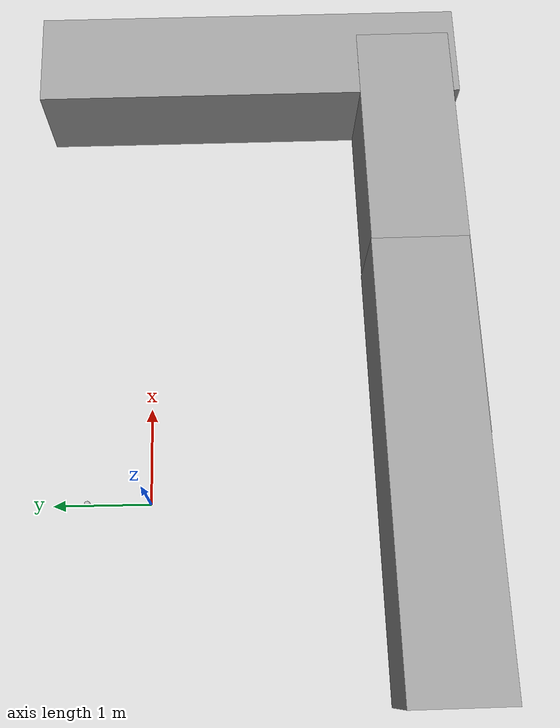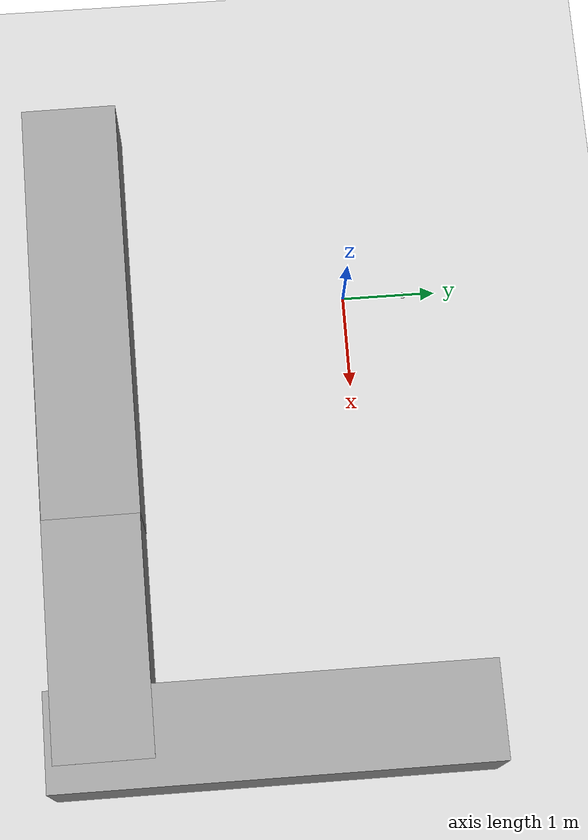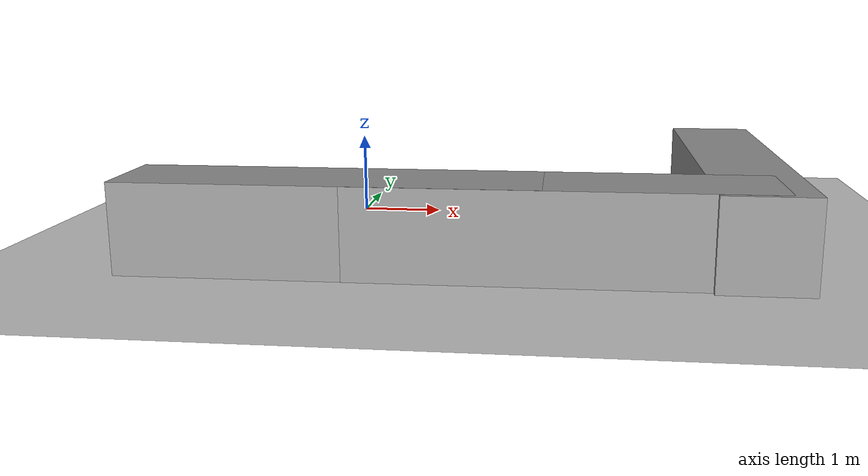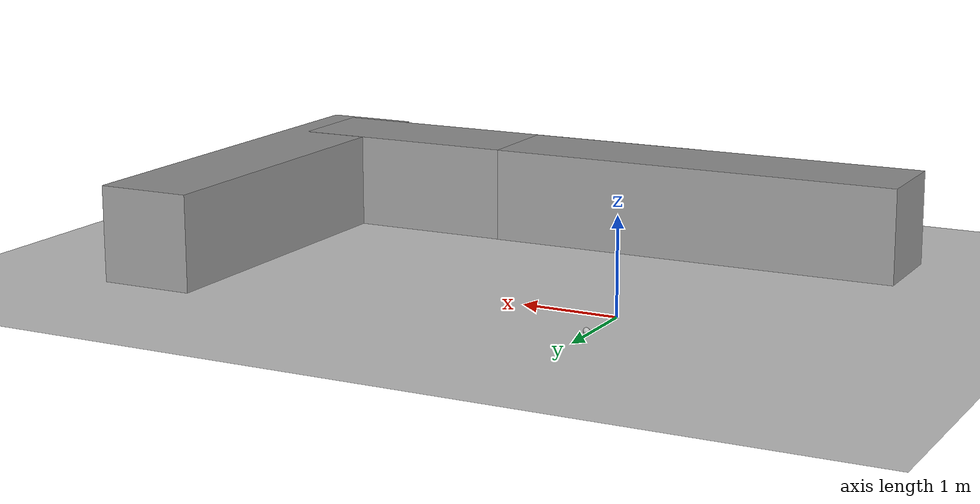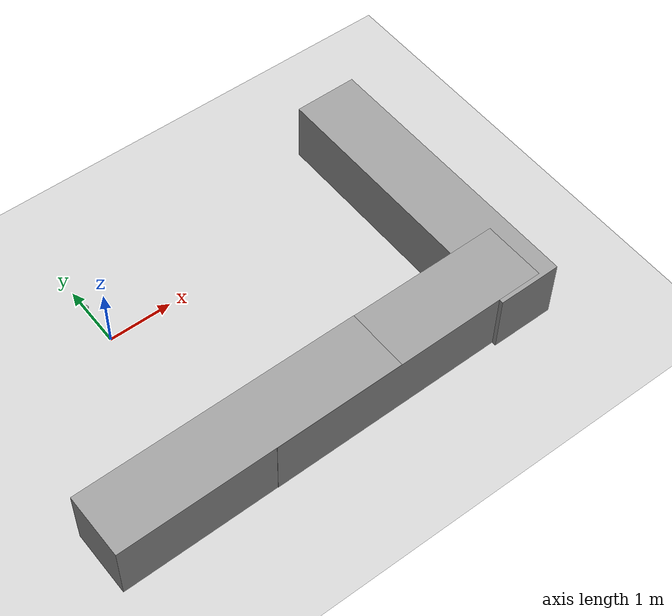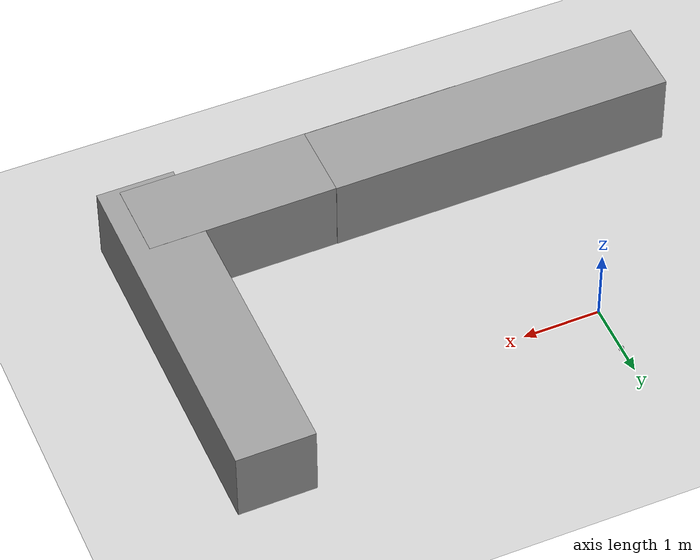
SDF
<sdf version="1.6">
 <world name="default">
  <model name="ground_plane">
   <static>1</static>
   <link name="link">
    <collision name="collision">
     <geometry><plane><normal>0 0 1</normal><size>100 100</size></plane></geometry>
     <surface><friction><ode><mu>100</mu><mu2>50</mu2></ode></friction></surface>
    </collision>
    <visual name="visual">
     <cast_shadows>0</cast_shadows>
     <geometry><plane><normal>0 0 1</normal><size>100 100</size></plane></geometry>
     <material>
      <script><uri>file://media/materials/scripts/gazebo.material</uri><name>Gazebo/Grey</name></script>
     </material>
    </visual>
   </link>
  </model>
  <model name="unit_box_0_clone_0_0_clone_clone_0_clone_clone">
   <link name="link">
    <inertial>
     <mass>1</mass>
     <inertia>
      <ixx>0.166667</ixx>
      <ixy>0</ixy>
      <ixz>0</ixz>
      <iyy>0.166667</iyy>
      <iyz>0</iyz>
      <izz>0.166667</izz>
     </inertia>
    </inertial>
    <visual name="visual">
     <geometry><box><size>1 4.48154 1</size></box></geometry>
     <material>
      <script><name>Gazebo/Grey</name><uri>file://media/materials/scripts/gazebo.material</uri></script>
      <ambient>0.3 0.3 0.3 1</ambient>
      <diffuse>0.7 0.7 0.7 1</diffuse>
      <specular>0.01 0.01 0.01 1</specular>
      <emissive>0 0 0 1</emissive>
     </material>
    </visual>
    <collision name="collision">
     <geometry><box><size>1 4.48154 1</size></box></geometry>
     <surface>
      <friction>
       <ode><mu>1</mu><mu2>1</mu2><fdir1>0 0 0</fdir1><slip1>0</slip1><slip2>0</slip2></ode>
       <torsional>
        <coefficient>1</coefficient>
        <patch_radius>0</patch_radius>
        <surface_radius>0</surface_radius>
        <use_patch_radius>1</use_patch_radius>
        <ode><slip>0</slip></ode>
       </torsional>
      </friction>
      <bounce><restitution_coefficient>0</restitution_coefficient><threshold>1e+06</threshold></bounce>
      <contact>
       <collide_without_contact>0</collide_without_contact>
       <collide_without_contact_bitmask>1</collide_without_contact_bitmask>
       <collide_bitmask>1</collide_bitmask>
       <ode>
        <soft_cfm>0</soft_cfm>
        <soft_erp>0.2</soft_erp>
        <kp>1e+13</kp>
        <kd>1</kd>
        <max_vel>0.01</max_vel>
        <min_depth>0</min_depth>
       </ode>
       <bullet>
        <split_impulse>1</split_impulse>
        <split_impulse_penetration_threshold>-0.01</split_impulse_penetration_threshold>
        <soft_cfm>0</soft_cfm>
        <soft_erp>0.2</soft_erp>
        <kp>1e+13</kp>
        <kd>1</kd>
       </bullet>
      </contact>
     </surface>
    </collision>
   </link>
   <static>1</static>
   <pose>0.247102 -2.80859 0.49975 3.14159 -0.000573 1.58078</pose>
  </model>
  <model name="unit_box_0_clone_0_0_clone_clone_0_clone_clone_clone">
   <link name="link">
    <inertial>
     <mass>1</mass>
     <inertia>
      <ixx>0.166667</ixx>
      <ixy>0</ixy>
      <ixz>0</ixz>
      <iyy>0.166667</iyy>
      <iyz>0</iyz>
      <izz>0.166667</izz>
     </inertia>
    </inertial>
    <visual name="visual">
     <geometry><box><size>1 4.48154 1</size></box></geometry>
     <material>
      <script><name>Gazebo/Grey</name><uri>file://media/materials/scripts/gazebo.material</uri></script>
      <ambient>0.3 0.3 0.3 1</ambient>
      <diffuse>0.7 0.7 0.7 1</diffuse>
      <specular>0.01 0.01 0.01 1</specular>
      <emissive>0 0 0 1</emissive>
     </material>
    </visual>
    <collision name="collision">
     <geometry><box><size>1 4.48154 1</size></box></geometry>
     <surface>
      <friction>
       <ode><mu>1</mu><mu2>1</mu2><fdir1>0 0 0</fdir1><slip1>0</slip1><slip2>0</slip2></ode>
       <torsional>
        <coefficient>1</coefficient>
        <patch_radius>0</patch_radius>
        <surface_radius>0</surface_radius>
        <use_patch_radius>1</use_patch_radius>
        <ode><slip>0</slip></ode>
       </torsional>
      </friction>
      <bounce><restitution_coefficient>0</restitution_coefficient><threshold>1e+06</threshold></bounce>
      <contact>
       <collide_without_contact>0</collide_without_contact>
       <collide_without_contact_bitmask>1</collide_without_contact_bitmask>
       <collide_bitmask>1</collide_bitmask>
       <ode>
        <soft_cfm>0</soft_cfm>
        <soft_erp>0.2</soft_erp>
        <kp>1e+13</kp>
        <kd>1</kd>
        <max_vel>0.01</max_vel>
        <min_depth>0</min_depth>
       </ode>
       <bullet>
        <split_impulse>1</split_impulse>
        <split_impulse_penetration_threshold>-0.01</split_impulse_penetration_threshold>
        <soft_cfm>0</soft_cfm>
        <soft_erp>0.2</soft_erp>
        <kp>1e+13</kp>
        <kd>1</kd>
       </bullet>
      </contact>
     </surface>
    </collision>
   </link>
   <static>1</static>
   <pose>2.68065 -2.78877 0.49975 3.14159 -0.000573 1.58078</pose>
  </model>
  <model name="unit_box_0_clone_0_0_clone_clone_0_clone_clone_clone_0_clone_clone_0_clone">
   <link name="link">
    <inertial>
     <mass>1</mass>
     <inertia>
      <ixx>0.166667</ixx>
      <ixy>0</ixy>
      <ixz>0</ixz>
      <iyy>0.166667</iyy>
      <iyz>0</iyz>
      <izz>0.166667</izz>
     </inertia>
    </inertial>
    <visual name="visual">
     <geometry><box><size>1 4.48154 1</size></box></geometry>
     <material>
      <script><name>Gazebo/Grey</name><uri>file://media/materials/scripts/gazebo.material</uri></script>
      <ambient>0.3 0.3 0.3 1</ambient>
      <diffuse>0.7 0.7 0.7 1</diffuse>
      <specular>0.01 0.01 0.01 1</specular>
      <emissive>0 0 0 1</emissive>
     </material>
    </visual>
    <collision name="collision">
     <geometry><box><size>1 4.48154 1</size></box></geometry>
     <surface>
      <friction>
       <ode><mu>1</mu><mu2>1</mu2><fdir1>0 0 0</fdir1><slip1>0</slip1><slip2>0</slip2></ode>
       <torsional>
        <coefficient>1</coefficient>
        <patch_radius>0</patch_radius>
        <surface_radius>0</surface_radius>
        <use_patch_radius>1</use_patch_radius>
        <ode><slip>0</slip></ode>
       </torsional>
      </friction>
      <bounce><restitution_coefficient>0</restitution_coefficient><threshold>1e+06</threshold></bounce>
      <contact>
       <collide_without_contact>0</collide_without_contact>
       <collide_without_contact_bitmask>1</collide_without_contact_bitmask>
       <collide_bitmask>1</collide_bitmask>
       <ode>
        <soft_cfm>0</soft_cfm>
        <soft_erp>0.2</soft_erp>
        <kp>1e+13</kp>
        <kd>1</kd>
        <max_vel>0.01</max_vel>
        <min_depth>0</min_depth>
       </ode>
       <bullet>
        <split_impulse>1</split_impulse>
        <split_impulse_penetration_threshold>-0.01</split_impulse_penetration_threshold>
        <soft_cfm>0</soft_cfm>
        <soft_erp>0.2</soft_erp>
        <kp>1e+13</kp>
        <kd>1</kd>
       </bullet>
      </contact>
     </surface>
    </collision>
   </link>
   <static>1</static>
   <pose>4.68691 -1.09395 0.49975 -3.14102 -0 0.006143</pose>
  </model>
  <model name="frc2016_ball_clone_0">
   <pose>0.012563 0.652544 0.033057 0 -0 0</pose>
   <link name="link">
    <inertial>
     <mass>0.213</mass>
     <inertia>
      <ixx>0.00322667</ixx>
      <ixy>0</ixy>
      <ixz>0</ixz>
      <iyy>0.00322667</iyy>
      <iyz>0</iyz>
      <izz>0.00322667</izz>
     </inertia>
    </inertial>
    <visual name="visual"><geometry><sphere><radius>0.0332087</radius></sphere></geometry></visual>
    <collision name="collision">
     <geometry><sphere><radius>0.0332087</radius></sphere></geometry>
     <surface>
      <bounce><restitution_coefficient>0.15937</restitution_coefficient><threshold>0</threshold></bounce>
      <contact><ode><max_vel>100</max_vel><min_depth>0.001</min_depth></ode></contact>
     </surface>
    </collision>
   </link>
  </model>
 </world>
</sdf>
